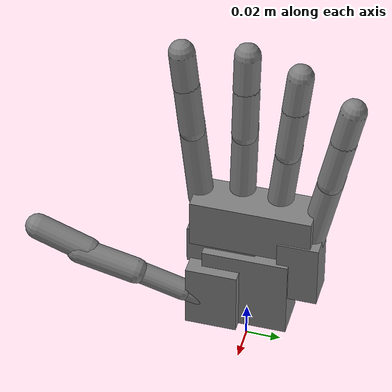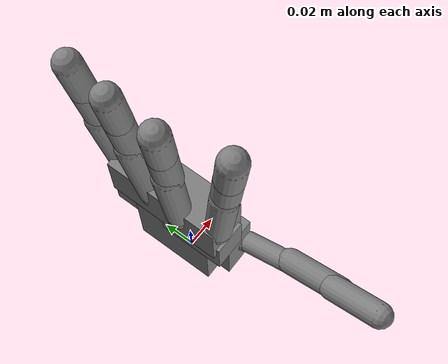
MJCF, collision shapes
<mujoco model="wujihand-left-mjx">
  <compiler angle="radian" meshdir="../meshes/left/" />

    <option timestep="0.01" integrator="Euler" iterations="5" ls_iterations="8">
    <flag eulerdamp="disable"/>
  </option>

  <custom>
    <numeric data="20" name="max_contact_points"/>
    <numeric data="16" name="max_geom_pairs"/>
  </custom>

    <default>
    <geom group="3" friction="0.2" solref="0.02 1.5" solimp="0.9 0.95 0.001" priority="1" contype="0" conaffinity="0"/>
    <joint axis="0 0 1" damping="0" armature="0.0002"/>
  </default>

  <asset>
    <mesh name="left_palm_link" content_type="model/stl" file="left_palm_link.STL" />
    <mesh name="left_finger1_link1" content_type="model/stl" file="left_finger1_link1.STL" />
    <mesh name="left_finger1_link2" content_type="model/stl" file="left_finger1_link2.STL" />
    <mesh name="left_finger1_link3" content_type="model/stl" file="left_finger1_link3.STL" />
    <mesh name="left_finger1_link4" content_type="model/stl" file="left_finger1_link4.STL" />
    <mesh name="left_finger1_tip_link" content_type="model/stl" file="left_finger1_tip_link.STL" />
    <mesh name="left_finger2_link1" content_type="model/stl" file="left_finger2_link1.STL" />
    <mesh name="left_finger2_link2" content_type="model/stl" file="left_finger2_link2.STL" />
    <mesh name="left_finger2_link3" content_type="model/stl" file="left_finger2_link3.STL" />
    <mesh name="left_finger2_link4" content_type="model/stl" file="left_finger2_link4.STL" />
    <mesh name="left_finger2_tip_link" content_type="model/stl" file="left_finger2_tip_link.STL" />
    <mesh name="left_finger3_link1" content_type="model/stl" file="left_finger3_link1.STL" />
    <mesh name="left_finger3_link2" content_type="model/stl" file="left_finger3_link2.STL" />
    <mesh name="left_finger3_link3" content_type="model/stl" file="left_finger3_link3.STL" />
    <mesh name="left_finger3_link4" content_type="model/stl" file="left_finger3_link4.STL" />
    <mesh name="left_finger3_tip_link" content_type="model/stl" file="left_finger3_tip_link.STL" />
    <mesh name="left_finger4_link1" content_type="model/stl" file="left_finger4_link1.STL" />
    <mesh name="left_finger4_link2" content_type="model/stl" file="left_finger4_link2.STL" />
    <mesh name="left_finger4_link3" content_type="model/stl" file="left_finger4_link3.STL" />
    <mesh name="left_finger4_link4" content_type="model/stl" file="left_finger4_link4.STL" />
    <mesh name="left_finger4_tip_link" content_type="model/stl" file="left_finger4_tip_link.STL" />
    <mesh name="left_finger5_link1" content_type="model/stl" file="left_finger5_link1.STL" />
    <mesh name="left_finger5_link2" content_type="model/stl" file="left_finger5_link2.STL" />
    <mesh name="left_finger5_link3" content_type="model/stl" file="left_finger5_link3.STL" />
    <mesh name="left_finger5_link4" content_type="model/stl" file="left_finger5_link4.STL" />
    <mesh name="left_finger5_tip_link" content_type="model/stl" file="left_finger5_tip_link.STL" />
  </asset>

  <worldbody>
    <body name="left_palm_link"><inertial pos="-0.00297879327955292 -0.00045255087071043 0.0366547088987225" mass="0.16914" quat="-0.01772809 -0.04274722 0.09308295 0.99458230" diaginertia="1.40677446e-04 9.58896475e-05 5.81329061e-05" /><geom type="mesh" contype="0" conaffinity="0" group="1" density="0" rgba="0.6 0.8 0.9 1" mesh="left_palm_link" />
          <geom name="left_palm_main" type="box" pos="-0.006 0.002 0.083" size="0.012 0.035 0.015" friction="0.7" contype="1" conaffinity="1"/>
      <geom name="left_palm_lower" type="box" pos="-0.003 0.0 0.04" size="0.012 0.025 0.025" friction="0.7" contype="1" conaffinity="1"/>
      <geom name="left_palm_thumb" type="box" pos="0.005 -0.018 0.035" size="0.010 0.015 0.020" friction="0.7" contype="1" conaffinity="1"/>
      <geom name="left_palm_upper" type="box" pos="-0.006 -0.015 0.065" size="0.010 0.020 0.012" friction="0.7" contype="1" conaffinity="1"/>
      <geom name="left_palm_pinky" type="box" pos="-0.003 0.030 0.060" size="0.010 0.012 0.020" friction="0.7" contype="1" conaffinity="1"/>
    <body name="left_finger1_link1" pos="0.00843985 -0.0205866 0.0288928" quat="0.382859 -0.0805082 0.617678 -0.682211">
      <inertial pos="0.00246636 -0.00124336 0.00779645" quat="0.904243 0.21652 0.0443878 -0.365368" mass="0.0075" diaginertia="3.37599e-07 3.01198e-07 2.11203e-07" />
      <joint name="left_finger1_joint1" pos="0 0 0" axis="0 -1 0" range="0.0583 1.5941" actuatorfrcrange="-0.4452 0.4452" armature="0.0005" />
      <geom type="mesh" contype="0" conaffinity="0" group="1" density="0" rgba="0.7 0.7 0.7 1" mesh="left_finger1_link1" />
            <geom name="left_finger1_link1_col" type="capsule" size="0.006" fromto="0 0 0 0.005 -0.006 0.014" contype="0" conaffinity="0"/>
      <body name="left_finger1_link2" pos="0.0047549 -0.00581914 0.0141321" quat="0.616957 -0.0855876 0.29085 -0.726254">
        <inertial pos="-0.00116592 -1.46603e-05 0.015656" quat="0.815906 0.0024483 -0.00462559 0.57816" mass="0.0248" diaginertia="2.81725e-06 2.75299e-06 6.79766e-07" />
        <joint name="left_finger1_joint2" pos="0 0 0" axis="0 1 0" range="-0.1199 0.9335" actuatorfrcrange="-0.4259 0.4259" armature="0.0005" />
        <geom type="mesh" contype="0" conaffinity="0" group="1" density="0" rgba="0.9 0.8 0.6 1" mesh="left_finger1_link2" />
              <geom name="left_finger1_link2_col" type="capsule" size="0.0063" fromto="0 0 0 0 -0.001 0.035" contype="2" conaffinity="2"/>
        <body name="left_finger1_link3" pos="-0.00026671 -0.000991502 0.0346656" quat="0.815739 -0.0150036 0.0212382 -0.577836">
          <inertial pos="-0.0011232 1.57299e-05 0.0130566" quat="0.999951 0 0.00989566 0" mass="0.0165" diaginertia="1.4604e-06 1.42e-06 4.49604e-07" />
          <joint name="left_finger1_joint3" pos="0 0 0" axis="0 1 0" range="-0.4646 1.5639" actuatorfrcrange="-0.1888 0.1888" />
          <geom type="mesh" contype="0" conaffinity="0" group="1" density="0" rgba="0.6 0.8 0.9 1" mesh="left_finger1_link3" />
                <geom name="left_finger1_link3_col" type="capsule" size="0.0075" fromto="0.001172 0.000488 -0.004938 -0.00102 -0.002888 0.029341" contype="1" conaffinity="1"/>
          <body name="left_finger1_link4" pos="0 -0.0002 0.0295">
            <inertial pos="-0.00158238 0.000214816 0.0113495" quat="0.70548 -0.0475109 -0.0474388 0.705542" mass="0.0206" diaginertia="2.59909e-06 2.57912e-06 7.59971e-07" />
            <joint name="left_finger1_joint4" pos="0 0 0" axis="0 1 0" range="-0.457 1.5684" actuatorfrcrange="-0.1468 0.1468" />
            <geom type="mesh" contype="0" conaffinity="0" group="1" density="0" rgba="0.6 0.8 0.9 1" mesh="left_finger1_link4" />
                  <geom name="left_finger1_link4_col" type="capsule" size="0.0075" fromto="-0.000732 -0.00051 -0.00502 -0.00159 -0.000443 0.026968" friction="0.7" contype="1" conaffinity="1"/>
            <geom pos="-0.00105 0.0002 0.0273" type="mesh" contype="0" conaffinity="0" group="1" density="0" rgba="0.6 0.8 0.9 1" mesh="left_finger1_tip_link" />

          </body>
        </body>
      </body>
    </body>
    <body name="left_finger2_link1" pos="-0.00587009 -0.0294339 0.0919165" quat="0.991689 0.0588292 -0.0292755 0.110616">
      <inertial pos="-0.00132907 -5.65872e-09 0.000319935" quat="0.92388 0 0.382683 0" mass="0.0032" diaginertia="1.1e-07 7e-08 5e-08" />
      <joint name="left_finger2_joint1" pos="0 0 0" axis="0 1 0" range="-0.156 1.5619" actuatorfrcrange="-0.6188 0.6188" armature="0.0005" />
      <geom type="mesh" contype="0" conaffinity="0" group="1" density="0" rgba="0.7 0.7 0.7 1" mesh="left_finger2_link1" />
            <geom name="left_finger2_link1_col" type="capsule" size="0.007" fromto="-0.004 0 -0.006 -0.004 0 0.008" contype="0" conaffinity="0"/>
      <body name="left_finger2_link2" pos="0.0022 0 0.00400001" quat="0.707107 0 0 0.707107">
        <inertial pos="4.37869e-07 0.00615752 0.020911" quat="0.70703 0.0104245 0.0104245 0.70703" mass="0.033" diaginertia="6.34e-06 6.31472e-06 8.85281e-07" />
        <joint name="left_finger2_joint2" pos="0 0 0" axis="0 1 0" range="-0.4095 0.2921" actuatorfrcrange="-0.1822 0.1822" />
        <geom type="mesh" contype="0" conaffinity="0" group="1" density="0" rgba="0.9 0.8 0.6 1" mesh="left_finger2_link2" />
              <geom name="left_finger2_link2_col" type="capsule" size="0.0075" fromto="0 0.006 -0.005 0 0.006 0.049" contype="2" conaffinity="2"/>
        <body name="left_finger2_link3" pos="0 0.00475 0.0436177" quat="0.707202 0 0 -0.707012">
          <inertial pos="-0.00112187 3.27619e-05 0.0157188" quat="0.999892 0 -0.0146884 0" mass="0.0165" diaginertia="1.47088e-06 1.44e-06 4.49118e-07" />
          <joint name="left_finger2_joint3" pos="0 0 0" axis="0 1 0" range="-0.4839 1.5466" actuatorfrcrange="-0.2251 0.2251" />
          <geom type="mesh" contype="0" conaffinity="0" group="1" density="0" rgba="0.6 0.8 0.9 1" mesh="left_finger2_link3" />
                <geom name="left_finger2_link3_col" type="capsule" size="0.0075" fromto="0 0 0 0 0 0.0295" contype="1" conaffinity="1"/>
          <body name="left_finger2_link4" pos="0 -0.0002 0.0295">
            <inertial pos="-0.000802981 -1.72016e-05 0.00761201" quat="0.998028 0.01288 -0.055568 0.0261826" mass="0.01718" diaginertia="1.55462e-06 1.45763e-06 4.20116e-07" />
            <joint name="left_finger2_joint4" pos="0 0 0" axis="0 1 0" range="-0.4723 1.5754" actuatorfrcrange="-0.217 0.217" />
            <geom type="mesh" contype="0" conaffinity="0" group="1" density="0" rgba="0.6 0.8 0.9 1" mesh="left_finger2_link4" />
                  <geom name="left_finger2_link4_col" type="capsule" size="0.0075" fromto="0 0 0 0 0 0.022" friction="0.7" contype="1" conaffinity="1"/>
            <geom pos="-0.0010521 0.000210869 0.0267" type="mesh" contype="0" conaffinity="0" group="1" density="0" rgba="0.6 0.8 0.9 1" mesh="left_finger2_tip_link" />

          </body>
        </body>
      </body>
    </body>
    <body name="left_finger3_link1" pos="-0.0104597 -0.00746146 0.0895435" quat="0.999048 1.26889e-05 -0.0436194 -0.000290548">
      <inertial pos="-0.00132907 -1.49941e-08 0.0003199" quat="0.92388 0 0.382683 0" mass="0.0032" diaginertia="1.1e-07 7e-08 5e-08" />
      <joint name="left_finger3_joint1" pos="0 0 0" axis="0 1 0" range="-0.1569 1.5536" actuatorfrcrange="-0.6494 0.6494" armature="0.0005" />
      <geom type="mesh" contype="0" conaffinity="0" group="1" density="0" rgba="0.7 0.7 0.7 1" mesh="left_finger3_link1" />
            <geom name="left_finger3_link1_col" type="capsule" size="0.007" fromto="-0.004 0 -0.006 -0.004 0 0.008" contype="0" conaffinity="0"/>
      <body name="left_finger3_link2" pos="0.0022 0 0.00400001" quat="0.707107 0 0 0.707107">
        <inertial pos="4.38062e-07 0.00615753 0.020911" quat="0.70703 0.0104245 0.0104245 0.70703" mass="0.033" diaginertia="6.34e-06 6.31472e-06 8.85281e-07" />
        <joint name="left_finger3_joint2" pos="0 0 0" axis="0 1 0" range="-0.3977 0.3115" actuatorfrcrange="-0.1827 0.1827" />
        <geom type="mesh" contype="0" conaffinity="0" group="1" density="0" rgba="0.9 0.8 0.6 1" mesh="left_finger3_link2" />
              <geom name="left_finger3_link2_col" type="capsule" size="0.0075" fromto="0 0.006 -0.005 0 0.006 0.049" contype="2" conaffinity="2"/>
        <body name="left_finger3_link3" pos="0 0.00475 0.0436177" quat="0.707202 0 0 -0.707012">
          <inertial pos="-0.00112187 3.27807e-05 0.0157188" quat="0.999892 0 -0.0146884 0" mass="0.0165" diaginertia="1.47088e-06 1.44e-06 4.49118e-07" />
          <joint name="left_finger3_joint3" pos="0 0 0" axis="0 1 0" range="-0.4847 1.5411" actuatorfrcrange="-0.2078 0.2078" />
          <geom type="mesh" contype="0" conaffinity="0" group="1" density="0" rgba="0.6 0.8 0.9 1" mesh="left_finger3_link3" />
                <geom name="left_finger3_link3_col" type="capsule" size="0.0075" fromto="0 0 0 0 0 0.0295" contype="1" conaffinity="1"/>
          <body name="left_finger3_link4" pos="0 -0.0002 0.0295">
            <inertial pos="-0.000801449 -1.76824e-05 0.00761202" quat="0.998029 0.0129107 -0.0554603 0.026365" mass="0.01718" diaginertia="1.55458e-06 1.45766e-06 4.20206e-07" />
            <joint name="left_finger3_joint4" pos="0 0 0" axis="0 1 0" range="-0.4671 1.5788" actuatorfrcrange="-0.2018 0.2018" />
            <geom type="mesh" contype="0" conaffinity="0" group="1" density="0" rgba="0.6 0.8 0.9 1" mesh="left_finger3_link4" />
                  <geom name="left_finger3_link4_col" type="capsule" size="0.0075" fromto="0 0 0 0 0 0.022" friction="0.7" contype="1" conaffinity="1"/>
            <geom pos="-0.0010504 0.000202672 0.0267" type="mesh" contype="0" conaffinity="0" group="1" density="0" rgba="0.6 0.8 0.9 1" mesh="left_finger3_tip_link" />

          </body>
        </body>
      </body>
    </body>
    <body name="left_finger4_link1" pos="-0.00766486 0.0137122 0.0844287" quat="0.997789 -0.0461017 -0.0405881 -0.0254">
      <inertial pos="-0.00132908 -9.69931e-09 0.000319865" quat="0.92388 0 0.382683 0" mass="0.0032" diaginertia="1.1e-07 7e-08 5e-08" />
      <joint name="left_finger4_joint1" pos="0 0 0" axis="0 1 0" range="-0.1507 1.5636" actuatorfrcrange="-0.6389 0.6389" armature="0.0005" />
      <geom type="mesh" contype="0" conaffinity="0" group="1" density="0" rgba="0.7 0.7 0.7 1" mesh="left_finger4_link1" />
            <geom name="left_finger4_link1_col" type="capsule" size="0.007" fromto="-0.004 0 -0.006 -0.004 0 0.008" contype="0" conaffinity="0"/>
      <body name="left_finger4_link2" pos="0.0022 0 0.00400001" quat="0.707107 0 0 0.707107">
        <inertial pos="4.36896e-07 0.00615754 0.020911" quat="0.70703 0.0104245 0.0104245 0.70703" mass="0.033" diaginertia="6.34e-06 6.31472e-06 8.85281e-07" />
        <joint name="left_finger4_joint2" pos="0 0 0" axis="0 1 0" range="-0.4101 0.3014" actuatorfrcrange="-0.1832 0.1832" />
        <geom type="mesh" contype="0" conaffinity="0" group="1" density="0" rgba="0.9 0.8 0.6 1" mesh="left_finger4_link2" />
              <geom name="left_finger4_link2_col" type="capsule" size="0.0075" fromto="0 0.006 -0.005 0 0.006 0.049" contype="2" conaffinity="2"/>
        <body name="left_finger4_link3" pos="0 0.00475 0.0436177" quat="0.707202 0 0 -0.707012">
          <inertial pos="-0.00112188 3.27942e-05 0.0157188" quat="0.999892 0 -0.0146884 0" mass="0.0165" diaginertia="1.47088e-06 1.44e-06 4.49118e-07" />
          <joint name="left_finger4_joint3" pos="0 0 0" axis="0 1 0" range="-0.4747 1.5526" actuatorfrcrange="-0.2249 0.2249" />
          <geom type="mesh" contype="0" conaffinity="0" group="1" density="0" rgba="0.6 0.8 0.9 1" mesh="left_finger4_link3" />
                <geom name="left_finger4_link3_col" type="capsule" size="0.0075" fromto="0 0 0 0 0 0.0295" contype="1" conaffinity="1"/>
          <body name="left_finger4_link4" pos="0 -0.0002 0.0295">
            <inertial pos="-0.000801408 -1.86048e-05 0.00761203" quat="0.998025 0.012979 -0.0554598 0.0264871" mass="0.01718" diaginertia="1.55462e-06 1.45766e-06 4.20231e-07" />
            <joint name="left_finger4_joint4" pos="0 0 0" axis="0 1 0" range="-0.4729 1.5718" actuatorfrcrange="-0.2044 0.2044" />
            <geom type="mesh" contype="0" conaffinity="0" group="1" density="0" rgba="0.6 0.8 0.9 1" mesh="left_finger4_link4" />
                  <geom name="left_finger4_link4_col" type="capsule" size="0.0075" fromto="0 0 0 0 0 0.022" friction="0.7" contype="1" conaffinity="1"/>
            <geom pos="-0.00104998 0.000202557 0.0267" type="mesh" contype="0" conaffinity="0" group="1" density="0" rgba="0.6 0.8 0.9 1" mesh="left_finger4_tip_link" />

          </body>
        </body>
      </body>
    </body>
    <body name="left_finger5_link1" pos="-0.00226865 0.0340011 0.0742813" quat="0.990869 -0.0993173 -0.0383255 -0.0827362">
      <inertial pos="-0.00132909 -2.35275e-08 0.000319845" quat="0.92388 0 0.382683 0" mass="0.0032" diaginertia="1.1e-07 7e-08 5e-08" />
      <joint name="left_finger5_joint1" pos="0 0 0" axis="0 1 0" range="-0.1578 1.5632" actuatorfrcrange="-0.6441 0.6441" armature="0.0005" />
      <geom type="mesh" contype="0" conaffinity="0" group="1" density="0" rgba="0.7 0.7 0.7 1" mesh="left_finger5_link1" />
            <geom name="left_finger5_link1_col" type="capsule" size="0.007" fromto="-0.004 0 -0.006 -0.004 0 0.008" contype="0" conaffinity="0"/>
      <body name="left_finger5_link2" pos="0.0022 0 0.00400001" quat="0.707107 0 0 0.707107">
        <inertial pos="4.36753e-07 0.00615753 0.020911" quat="0.70703 0.0104245 0.0104245 0.70703" mass="0.033" diaginertia="6.34e-06 6.31472e-06 8.85281e-07" />
        <joint name="left_finger5_joint2" pos="0 0 0" axis="0 1 0" range="-0.4103 0.2949" actuatorfrcrange="-0.1798 0.1798" />
        <geom type="mesh" contype="0" conaffinity="0" group="1" density="0" rgba="0.9 0.8 0.6 1" mesh="left_finger5_link2" />
              <geom name="left_finger5_link2_col" type="capsule" size="0.0075" fromto="0 0.006 -0.005 0 0.006 0.049" contype="2" conaffinity="2"/>
        <body name="left_finger5_link3" pos="0 0.00475 0.0436177" quat="0.707202 0 0 -0.707012">
          <inertial pos="-0.00112188 3.28067e-05 0.0157188" quat="0.999892 0 -0.0146884 0" mass="0.0165" diaginertia="1.47088e-06 1.44e-06 4.49118e-07" />
          <joint name="left_finger5_joint3" pos="0 0 0" axis="0 1 0" range="-0.4733 1.556" actuatorfrcrange="-0.2384 0.2384" />
          <geom type="mesh" contype="0" conaffinity="0" group="1" density="0" rgba="0.6 0.8 0.9 1" mesh="left_finger5_link3" />
                <geom name="left_finger5_link3_col" type="capsule" size="0.0075" fromto="0 0 0 0 0 0.0295" contype="1" conaffinity="1"/>
          <body name="left_finger5_link4" pos="0 -0.0002 0.0295">
            <inertial pos="-0.000801156 -1.7469e-05 0.00761203" quat="0.998031 0.0128934 -0.0554374 0.0263611" mass="0.01718" diaginertia="1.55457e-06 1.45766e-06 4.20216e-07" />
            <joint name="left_finger5_joint4" pos="0 0 0" axis="0 1 0" range="-0.4662 1.576" actuatorfrcrange="-0.1866 0.1866" />
            <geom type="mesh" contype="0" conaffinity="0" group="1" density="0" rgba="0.6 0.8 0.9 1" mesh="left_finger5_link4" />
                  <geom name="left_finger5_link4_col" type="capsule" size="0.0075" fromto="0 0 0 0 0 0.022" friction="0.7" contype="1" conaffinity="1"/>
            <geom pos="-0.00105041 0.000201047 0.0267" type="mesh" contype="0" conaffinity="0" group="1" density="0" rgba="0.6 0.8 0.9 1" mesh="left_finger5_tip_link" />

          </body>
        </body>
      </body>
    </body>
  </body></worldbody>

  <contact>
    <exclude body1="left_palm_link" body2="left_finger1_link1"/>
    <exclude body1="left_palm_link" body2="left_finger2_link1"/>
    <exclude body1="left_palm_link" body2="left_finger3_link1"/>
    <exclude body1="left_palm_link" body2="left_finger4_link1"/>
    <exclude body1="left_palm_link" body2="left_finger5_link1"/>
    <exclude body1="left_palm_link" body2="left_finger1_link2"/>
    <exclude body1="left_palm_link" body2="left_finger2_link2"/>
    <exclude body1="left_palm_link" body2="left_finger3_link2"/>
    <exclude body1="left_palm_link" body2="left_finger4_link2"/>
    <exclude body1="left_palm_link" body2="left_finger5_link2"/>
    <exclude body1="left_finger2_link1" body2="left_finger3_link1"/>
    <exclude body1="left_finger3_link1" body2="left_finger4_link1"/>
    <exclude body1="left_finger4_link1" body2="left_finger5_link1"/>
  </contact>
  <actuator>
    <position name="left_finger1_joint1_actuator" joint="left_finger1_joint1" kp="0.40844710645048043" kv="0.020882010257063675" ctrlrange="0.0583 1.594" forcerange="-0.4452 0.4452" />
    <position name="left_finger1_joint2_actuator" joint="left_finger1_joint2" kp="0.6858601063643346" kv="0.030610939996373314" ctrlrange="-0.1199 0.9335" forcerange="-0.4259 0.4259" />
    <position name="left_finger1_joint3_actuator" joint="left_finger1_joint3" kp="0.2391112196099482" kv="0.010181475050560962" ctrlrange="-0.4646 1.564" forcerange="-0.1888 0.1888" />
    <position name="left_finger1_joint4_actuator" joint="left_finger1_joint4" kp="0.20736128319711747" kv="0.00909698844675045" ctrlrange="-0.457 1.568" forcerange="-0.1468 0.1468" />
    <position name="left_finger2_joint1_actuator" joint="left_finger2_joint1" kp="0.37352218155860073" kv="0.01882274330029718" ctrlrange="-0.156 1.562" forcerange="-0.6188 0.6188" />
    <position name="left_finger2_joint2_actuator" joint="left_finger2_joint2" kp="0.45592448909027794" kv="0.019798167597016643" ctrlrange="-0.4095 0.2921" forcerange="-0.1822 0.1822" />
    <position name="left_finger2_joint3_actuator" joint="left_finger2_joint3" kp="0.24368366649522863" kv="0.010477031953162727" ctrlrange="-0.4839 1.547" forcerange="-0.2251 0.2251" />
    <position name="left_finger2_joint4_actuator" joint="left_finger2_joint4" kp="0.18026971340925335" kv="0.008240212147903584" ctrlrange="-0.4723 1.575" forcerange="-0.217 0.217" />
    <position name="left_finger3_joint1_actuator" joint="left_finger3_joint1" kp="0.3687093483646485" kv="0.01848622487024593" ctrlrange="-0.1569 1.554" forcerange="-0.6494 0.6494" />
    <position name="left_finger3_joint2_actuator" joint="left_finger3_joint2" kp="0.4164253443634641" kv="0.018032947229953678" ctrlrange="-0.3977 0.3115" forcerange="-0.1827 0.1827" />
    <position name="left_finger3_joint3_actuator" joint="left_finger3_joint3" kp="0.22218607502059182" kv="0.009592200014076666" ctrlrange="-0.4847 1.541" forcerange="-0.2078 0.2078" />
    <position name="left_finger3_joint4_actuator" joint="left_finger3_joint4" kp="0.19427606072023446" kv="0.009152994605972402" ctrlrange="-0.4671 1.579" forcerange="-0.2018 0.2018" />
    <position name="left_finger4_joint1_actuator" joint="left_finger4_joint1" kp="0.35718151495111794" kv="0.018376606800780005" ctrlrange="-0.1507 1.564" forcerange="-0.6389 0.6389" />
    <position name="left_finger4_joint2_actuator" joint="left_finger4_joint2" kp="0.42977315313086895" kv="0.01867700966212433" ctrlrange="-0.4101 0.3014" forcerange="-0.1832 0.1832" />
    <position name="left_finger4_joint3_actuator" joint="left_finger4_joint3" kp="0.24930151196247122" kv="0.01059512121009555" ctrlrange="-0.4747 1.553" forcerange="-0.2249 0.2249" />
    <position name="left_finger4_joint4_actuator" joint="left_finger4_joint4" kp="0.2285032688178066" kv="0.009917602877441107" ctrlrange="-0.4729 1.572" forcerange="-0.2044 0.2044" />
    <position name="left_finger5_joint1_actuator" joint="left_finger5_joint1" kp="0.3655325975433942" kv="0.018616960278988272" ctrlrange="-0.1578 1.563" forcerange="-0.6441 0.6441" />
    <position name="left_finger5_joint2_actuator" joint="left_finger5_joint2" kp="0.41393113081120425" kv="0.018732177029667153" ctrlrange="-0.4103 0.2949" forcerange="-0.1798 0.1798" />
    <position name="left_finger5_joint3_actuator" joint="left_finger5_joint3" kp="0.22729367621965954" kv="0.00951005441616486" ctrlrange="-0.4733 1.556" forcerange="-0.2384 0.2384" />
    <position name="left_finger5_joint4_actuator" joint="left_finger5_joint4" kp="0.1964723550341816" kv="0.009017295241756363" ctrlrange="-0.4662 1.576" forcerange="-0.1866 0.1866" />
  </actuator>
</mujoco>
